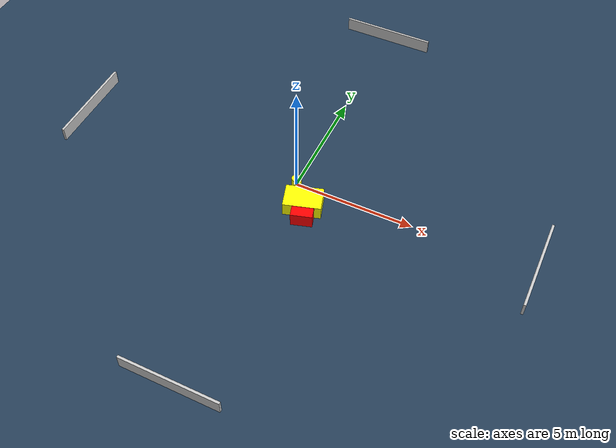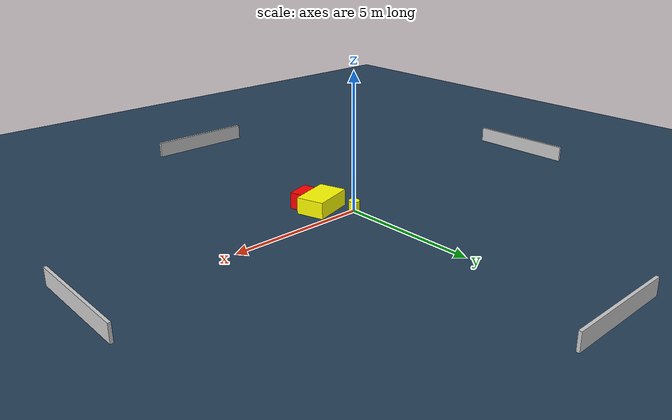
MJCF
<?xml version="1.0" ?>
<mujoco model="generated_environment">
  <option timestep="0.01" integrator="RK4" cone="elliptic"/>
  <default>
    <geom density="1"/>
  </default>
  <asset>
    <texture builtin="gradient" height="3072" name="skybox" rgb1="0.3 0.5 0.7" rgb2="0 0 0" type="skybox" width="512"/>
    <texture builtin="checker" height="300" name="groundplane" rgb1="0.2 0.3 0.4" rgb2="0.1 0.2 0.3" type="2d" width="300"/>
    <material name="groundplane" reflectance="0.2" texrepeat="5 5" texture="groundplane"/>
  </asset>
  <worldbody>
    <light dir="0 0 -1" directional="true" pos="0 0 1.5"/>
    <geom condim="3" friction="0.5 0.005 0.001" material="groundplane" name="floor" pos="0 0 0" size="0 0 0.05" type="plane"/>
    <body name="walls">
      <geom name="wall_1" condim="4" pos="-10.0 0.0 0.3" rgba="0.800000011920929 0.800000011920929 0.800000011920929 1.0" size="0.05 2.0 0.3" type="box"/>
      <geom name="wall_2" condim="4" pos="10.0 0.0 0.3" rgba="0.800000011920929 0.800000011920929 0.800000011920929 1.0" size="0.05 2.0 0.3" type="box"/>
      <geom name="wall_3" condim="4" pos="0.0 -10.0 0.3" rgba="0.800000011920929 0.800000011920929 0.800000011920929 1.0" size="2.0 0.05 0.3" type="box"/>
      <geom name="wall_4" condim="4" pos="0.0 10.0 0.3" rgba="0.800000011920929 0.800000011920929 0.800000011920929 1.0" size="2.0 0.05 0.3" type="box"/>
    </body>
    <body name="robot">
      <joint name="joint_x" type="slide" pos="0 0 0" axis="1 0 0"/>
      <joint name="joint_y" type="slide" pos="0 0 0" axis="0 1 0"/>
      <geom name="robot" type="cylinder" pos="0.0 0.0 0.2" size="0.2 0.2 0.0" mass="5.0" friction="1.0 0.005 0.0001" condim="4" rgba="1.0 1.0 0.0 1.0"/>
    </body>
    <body name="obstacle_1_movable">
      <geom name="obstacle_1_movable" condim="4" pos="0.7288878281506284 -0.9023402382277669 0.3" euler="0 0 196.9065823384388" friction="0.0 0.005 0.001" rgba="1.0 1.0 0.0 1.0" size="0.7699202108291459 0.5178352097680946 0.3" type="box" mass="0.1"/>
      <joint type="free"/>
    </body>
    <body name="obstacle_2_static">
      <geom name="obstacle_2_static" condim="4" pos="1.0014386556192867 -1.6070943132807738 0.3" euler="0 0 196.8444495153963" friction="0.0 0.005 0.001" rgba="1.0 0.0 0.0 1.0" size="0.43936054389662793 0.23144777834933383 0.3" type="box"/>
    </body>
  </worldbody>
  <actuator>
    <motor name="actuator_x" joint="joint_x" gear="1" ctrlrange="-1 1"/>
    <motor name="actuator_y" joint="joint_y" gear="1" ctrlrange="-1 1"/>
  </actuator>
</mujoco>
